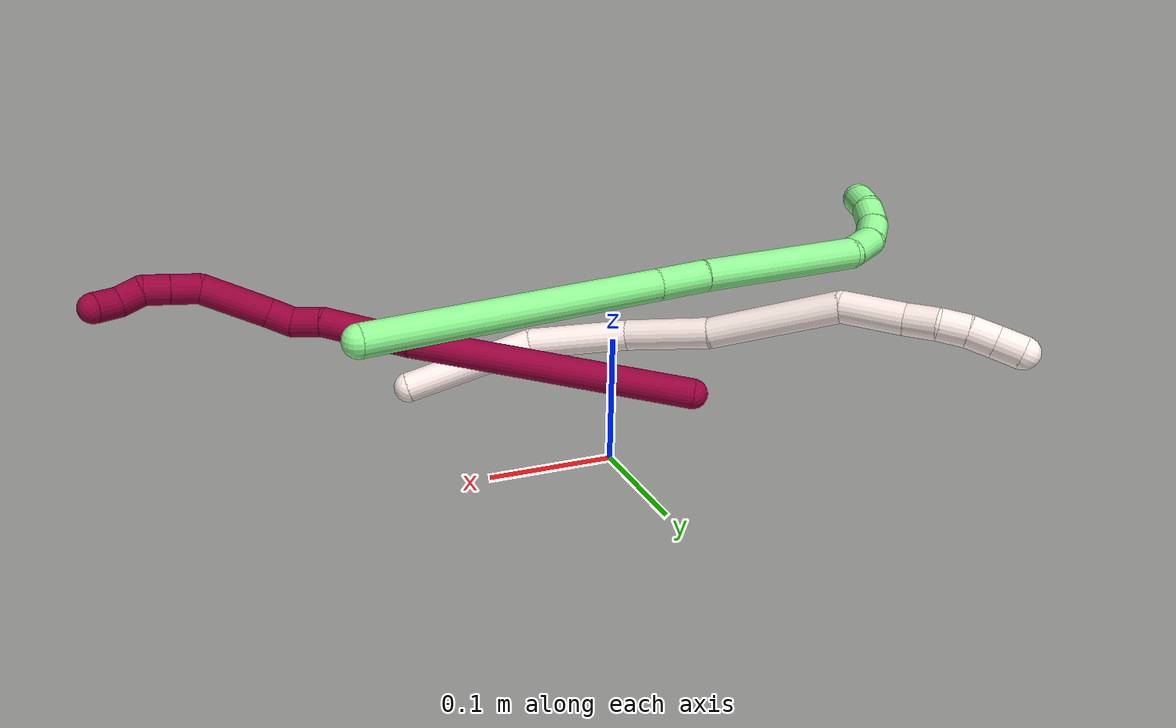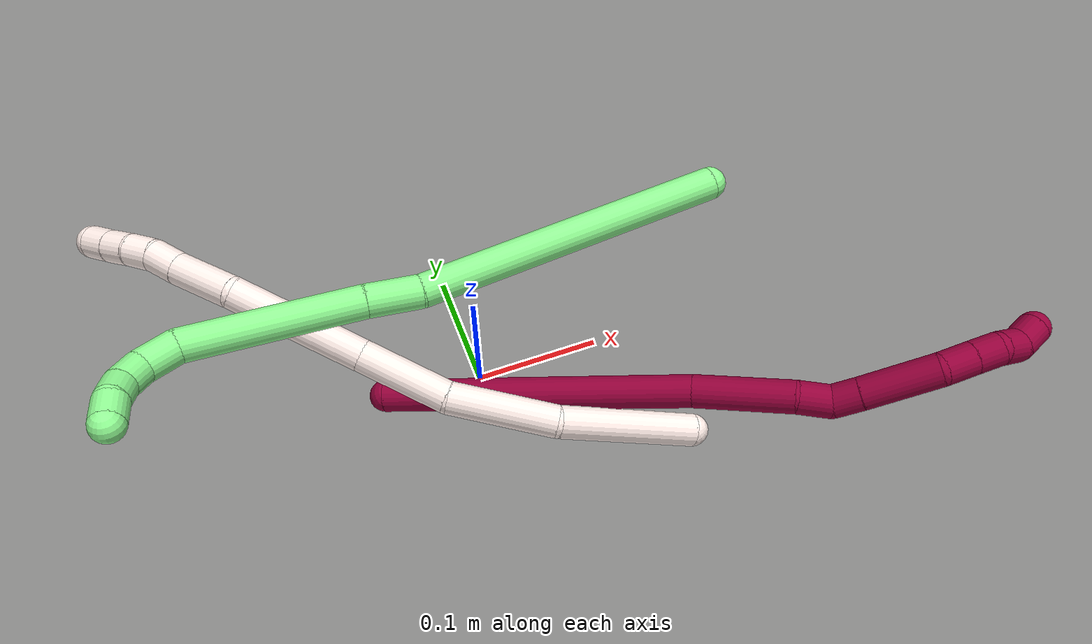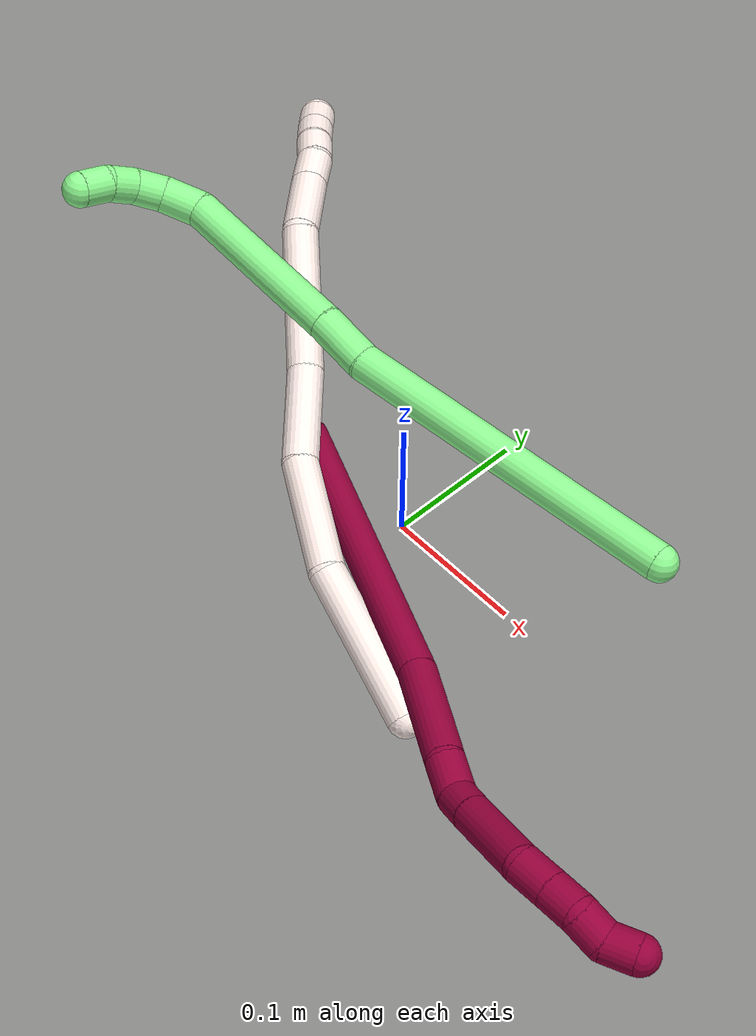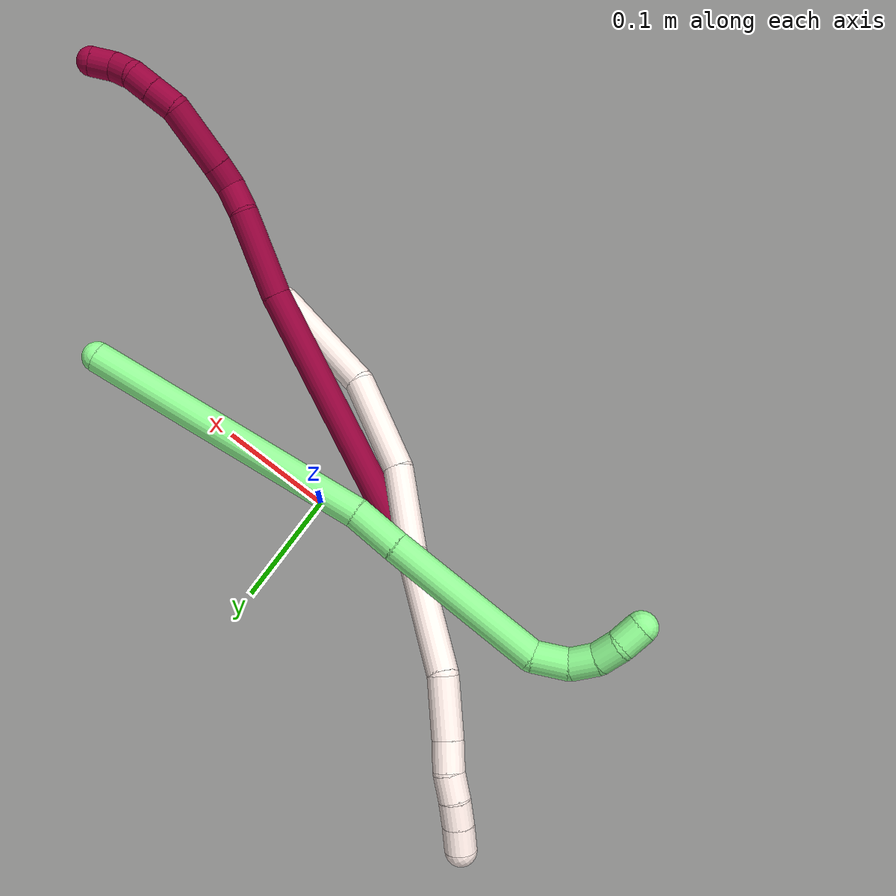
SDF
<sdf version="1.7">
 <world name="default">
  <model name="photoneo_s_sensor">
   <static>1</static>
   <pose>0 0 2 1.57079 1.57079 3.14159</pose>
   <link name="link">
    <inertial><mass>0.1</mass></inertial>
    <sensor name="sensor" type="depth">
     <update_rate>30</update_rate>
     <camera>
      <horizontal_fov>1.22</horizontal_fov>
      <image><width>1920</width><height>1200</height><format>B8G8R8</format></image>
      <clip><near>0.1</near><far>4</far></clip>
      <depth_camera><output>points</output></depth_camera>
     </camera>
     <plugin name="camera_plugin" filename="libgazebo_ros_depth_camera.so">
      <baseline>0.2</baseline>
      <alwaysOn>1</alwaysOn>
      <updateRate>0.0</updateRate>
      <cameraName>camera_ir</cameraName>
      <imageTopicName>/camera/color/image_raw</imageTopicName>
      <cameraInfoTopicName>/camera/color/camera_info</cameraInfoTopicName>
      <depthImageTopicName>/camera/depth/image_raw</depthImageTopicName>
      <depthImageCameraInfoTopicName>/camera/depth/camera_info</depthImageCameraInfoTopicName>
      <pointCloudTopicName>/camera/depth/points</pointCloudTopicName>
      <frameName>fr_optical</frameName>
      <pointCloudCutoff>0.1</pointCloudCutoff>
      <pointCloudCutoffMax>2.0</pointCloudCutoffMax>
      <distortionK1>0</distortionK1>
      <distortionK2>0</distortionK2>
      <distortionK3>0</distortionK3>
      <distortionT1>0</distortionT1>
      <distortionT2>0</distortionT2>
      <CxPrime>0</CxPrime>
      <Cx>0</Cx>
      <Cy>0</Cy>
      <focalLength>0</focalLength>
      <hackBaseline>0</hackBaseline>
     </plugin>
    </sensor>
   </link>
  </model>
  <model name="bin">
   <static>1</static>
   <link name="bottom">
    <collision name="collision-bottom">
     <pose>0 0 -0.01 0 -0 0</pose>
     <geometry><box><size>0.8 0.6 0.02</size></box></geometry>
     <surface>
      <friction><ode><mu>100</mu><mu2>100</mu2></ode></friction>
      <contact><collide_bitmask>65535</collide_bitmask></contact>
     </surface>
    </collision>
   </link>
   <link name="west_wall">
    <collision name="collision-west_wall">
     <pose>-0.41 0 0.1 0 -0 0</pose>
     <geometry><box><size>0.02 0.6 0.2</size></box></geometry>
     <surface>
      <friction><ode><mu>100</mu><mu2>100</mu2></ode></friction>
      <contact><collide_bitmask>65535</collide_bitmask></contact>
     </surface>
    </collision>
   </link>
   <link name="east_wall">
    <collision name="collision-east_wall">
     <pose>0.41 0 0.1 0 -0 0</pose>
     <geometry><box><size>0.02 0.6 0.2</size></box></geometry>
     <surface>
      <friction><ode><mu>100</mu><mu2>100</mu2></ode></friction>
      <contact><collide_bitmask>65535</collide_bitmask></contact>
     </surface>
    </collision>
   </link>
   <link name="south_wall">
    <collision name="collision-south_wall">
     <pose>0 -0.31 0.1 0 -0 0</pose>
     <geometry><box><size>0.8 0.02 0.2</size></box></geometry>
     <surface>
      <friction><ode><mu>100</mu><mu2>100</mu2></ode></friction>
      <contact><collide_bitmask>65535</collide_bitmask></contact>
     </surface>
    </collision>
   </link>
   <link name="north_wall">
    <collision name="collision-north_wall">
     <pose>0 0.31 0.1 0 -0 0</pose>
     <geometry><box><size>0.8 0.02 0.2</size></box></geometry>
     <surface>
      <friction><ode><mu>100</mu><mu2>100</mu2></ode></friction>
      <contact><collide_bitmask>65535</collide_bitmask></contact>
     </surface>
    </collision>
   </link>
  </model>
  <model name="8">
   <static>0</static>
   <link name="8">
    <collision name="collision-cylinder-e_1_1_4">
     <pose>0.082407 -0.004701 0.083787 0.056053 0.776304 0.022925</pose>
     <geometry><cylinder><radius>0.0125</radius><length>0.23523</length></cylinder></geometry>
     <surface>
      <friction><ode><mu>1.16</mu><mu2>1.16</mu2><slip1>0</slip1><slip2>0</slip2></ode></friction>
      <contact><ode><kp>1e+06</kp><kd>1</kd><max_vel>0</max_vel><min_depth>0.001</min_depth></ode></contact>
     </surface>
    </collision>
    <visual name="visual-cylinder-e_1_1_4">
     <pose>0.082407 -0.004701 0.083787 0.056053 0.776304 0.022925</pose>
     <geometry><cylinder><radius>0.0125</radius><length>0.23523</length></cylinder></geometry>
     <material><ambient>0.584314 0 0.227451 1</ambient></material>
    </visual>
    <collision name="collision-cylinder-e_2_4_5">
     <pose>0.189847 -0.014349 0.194839 0.179447 0.734708 0.069214</pose>
     <geometry><cylinder><radius>0.0125</radius><length>0.074687</length></cylinder></geometry>
     <surface>
      <friction><ode><mu>1.16</mu><mu2>1.16</mu2><slip1>0</slip1><slip2>0</slip2></ode></friction>
      <contact><ode><kp>1e+06</kp><kd>1</kd><max_vel>0</max_vel><min_depth>0.001</min_depth></ode></contact>
     </surface>
    </collision>
    <visual name="visual-cylinder-e_2_4_5">
     <pose>0.189847 -0.014349 0.194839 0.179447 0.734708 0.069214</pose>
     <geometry><cylinder><radius>0.0125</radius><length>0.074687</length></cylinder></geometry>
     <material><ambient>0.584314 0 0.227451 1</ambient></material>
    </visual>
    <collision name="collision-cylinder-e_3_5_6">
     <pose>0.225456 -0.020735 0.229204 0.200114 0.970182 0.105735</pose>
     <geometry><cylinder><radius>0.0125</radius><length>0.025638</length></cylinder></geometry>
     <surface>
      <friction><ode><mu>1.16</mu><mu2>1.16</mu2><slip1>0</slip1><slip2>0</slip2></ode></friction>
      <contact><ode><kp>1e+06</kp><kd>1</kd><max_vel>0</max_vel><min_depth>0.001</min_depth></ode></contact>
     </surface>
    </collision>
    <visual name="visual-cylinder-e_3_5_6">
     <pose>0.225456 -0.020735 0.229204 0.200114 0.970182 0.105735</pose>
     <geometry><cylinder><radius>0.0125</radius><length>0.025638</length></cylinder></geometry>
     <material><ambient>0.584314 0 0.227451 1</ambient></material>
    </visual>
    <collision name="collision-cylinder-e_4_6_7">
     <pose>0.24135 -0.020706 0.245379 -0.16044 0.524475 -0.043151</pose>
     <geometry><cylinder><radius>0.0125</radius><length>0.021242</length></cylinder></geometry>
     <surface>
      <friction><ode><mu>1.16</mu><mu2>1.16</mu2><slip1>0</slip1><slip2>0</slip2></ode></friction>
      <contact><ode><kp>1e+06</kp><kd>1</kd><max_vel>0</max_vel><min_depth>0.001</min_depth></ode></contact>
     </surface>
    </collision>
    <visual name="visual-cylinder-e_4_6_7">
     <pose>0.24135 -0.020706 0.245379 -0.16044 0.524475 -0.043151</pose>
     <geometry><cylinder><radius>0.0125</radius><length>0.021242</length></cylinder></geometry>
     <material><ambient>0.584314 0 0.227451 1</ambient></material>
    </visual>
    <collision name="collision-cylinder-e_5_7_8">
     <pose>0.26145 -0.014197 0.278363 -0.207773 0.544047 -0.058149</pose>
     <geometry><cylinder><radius>0.0125</radius><length>0.057114</length></cylinder></geometry>
     <surface>
      <friction><ode><mu>1.16</mu><mu2>1.16</mu2><slip1>0</slip1><slip2>0</slip2></ode></friction>
      <contact><ode><kp>1e+06</kp><kd>1</kd><max_vel>0</max_vel><min_depth>0.001</min_depth></ode></contact>
     </surface>
    </collision>
    <visual name="visual-cylinder-e_5_7_8">
     <pose>0.26145 -0.014197 0.278363 -0.207773 0.544047 -0.058149</pose>
     <geometry><cylinder><radius>0.0125</radius><length>0.057114</length></cylinder></geometry>
     <material><ambient>0.584314 0 0.227451 1</ambient></material>
    </visual>
    <collision name="collision-cylinder-e_6_8_9">
     <pose>0.285009 -0.004832 0.309044 -0.56835 0.829529 -0.255806</pose>
     <geometry><cylinder><radius>0.0125</radius><length>0.023803</length></cylinder></geometry>
     <surface>
      <friction><ode><mu>1.16</mu><mu2>1.16</mu2><slip1>0</slip1><slip2>0</slip2></ode></friction>
      <contact><ode><kp>1e+06</kp><kd>1</kd><max_vel>0</max_vel><min_depth>0.001</min_depth></ode></contact>
     </surface>
    </collision>
    <visual name="visual-cylinder-e_6_8_9">
     <pose>0.285009 -0.004832 0.309044 -0.56835 0.829529 -0.255806</pose>
     <geometry><cylinder><radius>0.0125</radius><length>0.023803</length></cylinder></geometry>
     <material><ambient>0.584314 0 0.227451 1</ambient></material>
    </visual>
    <collision name="collision-cylinder-e_7_9_10">
     <pose>0.301518 0.003215 0.321763 -0.559204 0.833852 -0.252971</pose>
     <geometry><cylinder><radius>0.0125</radius><length>0.020876</length></cylinder></geometry>
     <surface>
      <friction><ode><mu>1.16</mu><mu2>1.16</mu2><slip1>0</slip1><slip2>0</slip2></ode></friction>
      <contact><ode><kp>1e+06</kp><kd>1</kd><max_vel>0</max_vel><min_depth>0.001</min_depth></ode></contact>
     </surface>
    </collision>
    <visual name="visual-cylinder-e_7_9_10">
     <pose>0.301518 0.003215 0.321763 -0.559204 0.833852 -0.252971</pose>
     <geometry><cylinder><radius>0.0125</radius><length>0.020876</length></cylinder></geometry>
     <material><ambient>0.584314 0 0.227451 1</ambient></material>
    </visual>
    <collision name="collision-cylinder-e_8_10_11">
     <pose>0.318752 0.010511 0.329295 -1.15323 1.1805 -0.821751</pose>
     <geometry><cylinder><radius>0.0125</radius><length>0.020556</length></cylinder></geometry>
     <surface>
      <friction><ode><mu>1.16</mu><mu2>1.16</mu2><slip1>0</slip1><slip2>0</slip2></ode></friction>
      <contact><ode><kp>1e+06</kp><kd>1</kd><max_vel>0</max_vel><min_depth>0.001</min_depth></ode></contact>
     </surface>
    </collision>
    <visual name="visual-cylinder-e_8_10_11">
     <pose>0.318752 0.010511 0.329295 -1.15323 1.1805 -0.821751</pose>
     <geometry><cylinder><radius>0.0125</radius><length>0.020556</length></cylinder></geometry>
     <material><ambient>0.584314 0 0.227451 1</ambient></material>
    </visual>
    <collision name="collision-cylinder-e_9_11_2">
     <pose>0.334875 0.021383 0.3343 -1.13264 0.687485 -0.447544</pose>
     <geometry><cylinder><radius>0.0125</radius><length>0.020855</length></cylinder></geometry>
     <surface>
      <friction><ode><mu>1.16</mu><mu2>1.16</mu2><slip1>0</slip1><slip2>0</slip2></ode></friction>
      <contact><ode><kp>1e+06</kp><kd>1</kd><max_vel>0</max_vel><min_depth>0.001</min_depth></ode></contact>
     </surface>
    </collision>
    <visual name="visual-cylinder-e_9_11_2">
     <pose>0.334875 0.021383 0.3343 -1.13264 0.687485 -0.447544</pose>
     <geometry><cylinder><radius>0.0125</radius><length>0.020855</length></cylinder></geometry>
     <material><ambient>0.584314 0 0.227451 1</ambient></material>
    </visual>
    <collision name="collision-sphere-2">
     <pose>0.341492 0.028681 0.337719 0 -0 0</pose>
     <geometry><sphere><radius>0.0125</radius></sphere></geometry>
     <surface>
      <friction><ode><mu>1.16</mu><mu2>1.16</mu2><slip1>0</slip1><slip2>0</slip2></ode></friction>
      <contact><ode><kp>1e+06</kp><kd>1</kd><max_vel>0</max_vel><min_depth>0.001</min_depth></ode></contact>
     </surface>
    </collision>
    <visual name="visual-sphere-2">
     <pose>0.341492 0.028681 0.337719 0 -0 0</pose>
     <geometry><sphere><radius>0.0125</radius></sphere></geometry>
     <material><ambient>0.584314 0 0.227451 1</ambient></material>
    </visual>
    <collision name="collision-sphere-11">
     <pose>0.328258 0.014085 0.330881 0 -0 0</pose>
     <geometry><sphere><radius>0.0125</radius></sphere></geometry>
     <surface>
      <friction><ode><mu>1.16</mu><mu2>1.16</mu2><slip1>0</slip1><slip2>0</slip2></ode></friction>
      <contact><ode><kp>1e+06</kp><kd>1</kd><max_vel>0</max_vel><min_depth>0.001</min_depth></ode></contact>
     </surface>
    </collision>
    <visual name="visual-sphere-11">
     <pose>0.328258 0.014085 0.330881 0 -0 0</pose>
     <geometry><sphere><radius>0.0125</radius></sphere></geometry>
     <material><ambient>0.584314 0 0.227451 1</ambient></material>
    </visual>
    <collision name="collision-sphere-10">
     <pose>0.309247 0.006936 0.327709 0 -0 0</pose>
     <geometry><sphere><radius>0.0125</radius></sphere></geometry>
     <surface>
      <friction><ode><mu>1.16</mu><mu2>1.16</mu2><slip1>0</slip1><slip2>0</slip2></ode></friction>
      <contact><ode><kp>1e+06</kp><kd>1</kd><max_vel>0</max_vel><min_depth>0.001</min_depth></ode></contact>
     </surface>
    </collision>
    <visual name="visual-sphere-10">
     <pose>0.309247 0.006936 0.327709 0 -0 0</pose>
     <geometry><sphere><radius>0.0125</radius></sphere></geometry>
     <material><ambient>0.584314 0 0.227451 1</ambient></material>
    </visual>
    <collision name="collision-sphere-9">
     <pose>0.293788 -0.000506 0.315817 0 -0 0</pose>
     <geometry><sphere><radius>0.0125</radius></sphere></geometry>
     <surface>
      <friction><ode><mu>1.16</mu><mu2>1.16</mu2><slip1>0</slip1><slip2>0</slip2></ode></friction>
      <contact><ode><kp>1e+06</kp><kd>1</kd><max_vel>0</max_vel><min_depth>0.001</min_depth></ode></contact>
     </surface>
    </collision>
    <visual name="visual-sphere-9">
     <pose>0.293788 -0.000506 0.315817 0 -0 0</pose>
     <geometry><sphere><radius>0.0125</radius></sphere></geometry>
     <material><ambient>0.584314 0 0.227451 1</ambient></material>
    </visual>
    <collision name="collision-sphere-4">
     <pose>0.164813 -0.009403 0.167575 0 -0 0</pose>
     <geometry><sphere><radius>0.0125</radius></sphere></geometry>
     <surface>
      <friction><ode><mu>1.16</mu><mu2>1.16</mu2><slip1>0</slip1><slip2>0</slip2></ode></friction>
      <contact><ode><kp>1e+06</kp><kd>1</kd><max_vel>0</max_vel><min_depth>0.001</min_depth></ode></contact>
     </surface>
    </collision>
    <visual name="visual-sphere-4">
     <pose>0.164813 -0.009403 0.167575 0 -0 0</pose>
     <geometry><sphere><radius>0.0125</radius></sphere></geometry>
     <material><ambient>0.584314 0 0.227451 1</ambient></material>
    </visual>
    <collision name="collision-sphere-1">
     <geometry><sphere><radius>0.0125</radius></sphere></geometry>
     <surface>
      <friction><ode><mu>1.16</mu><mu2>1.16</mu2><slip1>0</slip1><slip2>0</slip2></ode></friction>
      <contact><ode><kp>1e+06</kp><kd>1</kd><max_vel>0</max_vel><min_depth>0.001</min_depth></ode></contact>
     </surface>
    </collision>
    <visual name="visual-sphere-1">
     <geometry><sphere><radius>0.0125</radius></sphere></geometry>
     <material><ambient>0.584314 0 0.227451 1</ambient></material>
    </visual>
    <collision name="collision-sphere-8">
     <pose>0.276231 -0.009157 0.302272 0 -0 0</pose>
     <geometry><sphere><radius>0.0125</radius></sphere></geometry>
     <surface>
      <friction><ode><mu>1.16</mu><mu2>1.16</mu2><slip1>0</slip1><slip2>0</slip2></ode></friction>
      <contact><ode><kp>1e+06</kp><kd>1</kd><max_vel>0</max_vel><min_depth>0.001</min_depth></ode></contact>
     </surface>
    </collision>
    <visual name="visual-sphere-8">
     <pose>0.276231 -0.009157 0.302272 0 -0 0</pose>
     <geometry><sphere><radius>0.0125</radius></sphere></geometry>
     <material><ambient>0.584314 0 0.227451 1</ambient></material>
    </visual>
    <collision name="collision-sphere-5">
     <pose>0.214881 -0.019295 0.222104 0 -0 0</pose>
     <geometry><sphere><radius>0.0125</radius></sphere></geometry>
     <surface>
      <friction><ode><mu>1.16</mu><mu2>1.16</mu2><slip1>0</slip1><slip2>0</slip2></ode></friction>
      <contact><ode><kp>1e+06</kp><kd>1</kd><max_vel>0</max_vel><min_depth>0.001</min_depth></ode></contact>
     </surface>
    </collision>
    <visual name="visual-sphere-5">
     <pose>0.214881 -0.019295 0.222104 0 -0 0</pose>
     <geometry><sphere><radius>0.0125</radius></sphere></geometry>
     <material><ambient>0.584314 0 0.227451 1</ambient></material>
    </visual>
    <collision name="collision-sphere-6">
     <pose>0.236032 -0.022175 0.236304 0 -0 0</pose>
     <geometry><sphere><radius>0.0125</radius></sphere></geometry>
     <surface>
      <friction><ode><mu>1.16</mu><mu2>1.16</mu2><slip1>0</slip1><slip2>0</slip2></ode></friction>
      <contact><ode><kp>1e+06</kp><kd>1</kd><max_vel>0</max_vel><min_depth>0.001</min_depth></ode></contact>
     </surface>
    </collision>
    <visual name="visual-sphere-6">
     <pose>0.236032 -0.022175 0.236304 0 -0 0</pose>
     <geometry><sphere><radius>0.0125</radius></sphere></geometry>
     <material><ambient>0.584314 0 0.227451 1</ambient></material>
    </visual>
    <collision name="collision-sphere-7">
     <pose>0.246669 -0.019237 0.254455 0 -0 0</pose>
     <geometry><sphere><radius>0.0125</radius></sphere></geometry>
     <surface>
      <friction><ode><mu>1.16</mu><mu2>1.16</mu2><slip1>0</slip1><slip2>0</slip2></ode></friction>
      <contact><ode><kp>1e+06</kp><kd>1</kd><max_vel>0</max_vel><min_depth>0.001</min_depth></ode></contact>
     </surface>
    </collision>
    <visual name="visual-sphere-7">
     <pose>0.246669 -0.019237 0.254455 0 -0 0</pose>
     <geometry><sphere><radius>0.0125</radius></sphere></geometry>
     <material><ambient>0.584314 0 0.227451 1</ambient></material>
    </visual>
    <inertial>
     <pose>0.172035 -0.006691 0.178125 0 -0 0</pose>
     <mass>0.5</mass>
     <inertia>
      <ixx>0.000874</ixx>
      <ixy>0</ixy>
      <ixz>0</ixz>
      <iyy>0.001177</iyy>
      <iyz>0</iyz>
      <izz>-0.00074</izz>
     </inertia>
    </inertial>
   </link>
   <pose>-0.078661 -0.013309 0.037976 0.180853 0.61634 -0.267081</pose>
  </model>
  <model name="11">
   <static>0</static>
   <link name="11">
    <collision name="collision-cylinder-e_1_1_4">
     <pose>-0.014424 0.035158 0.038717 -0.737256 -0.269115 0.104492</pose>
     <geometry><cylinder><radius>0.0125</radius><length>0.108501</length></cylinder></geometry>
     <surface>
      <friction><ode><mu>1.16</mu><mu2>1.16</mu2><slip1>0</slip1><slip2>0</slip2></ode></friction>
      <contact><ode><kp>1e+06</kp><kd>1</kd><max_vel>0</max_vel><min_depth>0.001</min_depth></ode></contact>
     </surface>
    </collision>
    <visual name="visual-cylinder-e_1_1_4">
     <pose>-0.014424 0.035158 0.038717 -0.737256 -0.269115 0.104492</pose>
     <geometry><cylinder><radius>0.0125</radius><length>0.108501</length></cylinder></geometry>
     <material><ambient>1 0.933333 0.909804 1</ambient></material>
    </visual>
    <collision name="collision-cylinder-e_2_4_5">
     <pose>-0.047151 0.086517 0.110547 -0.455025 -0.460828 0.108514</pose>
     <geometry><cylinder><radius>0.0125</radius><length>0.082316</length></cylinder></geometry>
     <surface>
      <friction><ode><mu>1.16</mu><mu2>1.16</mu2><slip1>0</slip1><slip2>0</slip2></ode></friction>
      <contact><ode><kp>1e+06</kp><kd>1</kd><max_vel>0</max_vel><min_depth>0.001</min_depth></ode></contact>
     </surface>
    </collision>
    <visual name="visual-cylinder-e_2_4_5">
     <pose>-0.047151 0.086517 0.110547 -0.455025 -0.460828 0.108514</pose>
     <geometry><cylinder><radius>0.0125</radius><length>0.082316</length></cylinder></geometry>
     <material><ambient>1 0.933333 0.909804 1</ambient></material>
    </visual>
    <collision name="collision-cylinder-e_3_5_6">
     <pose>-0.088386 0.112101 0.16889 -0.356066 -0.705632 0.132321</pose>
     <geometry><cylinder><radius>0.0125</radius><length>0.070723</length></cylinder></geometry>
     <surface>
      <friction><ode><mu>1.16</mu><mu2>1.16</mu2><slip1>0</slip1><slip2>0</slip2></ode></friction>
      <contact><ode><kp>1e+06</kp><kd>1</kd><max_vel>0</max_vel><min_depth>0.001</min_depth></ode></contact>
     </surface>
    </collision>
    <visual name="visual-cylinder-e_3_5_6">
     <pose>-0.088386 0.112101 0.16889 -0.356066 -0.705632 0.132321</pose>
     <geometry><cylinder><radius>0.0125</radius><length>0.070723</length></cylinder></geometry>
     <material><ambient>1 0.933333 0.909804 1</ambient></material>
    </visual>
    <collision name="collision-cylinder-e_4_6_7">
     <pose>-0.14436 0.143535 0.227927 -0.577934 -0.685995 0.211539</pose>
     <geometry><cylinder><radius>0.0125</radius><length>0.104326</length></cylinder></geometry>
     <surface>
      <friction><ode><mu>1.16</mu><mu2>1.16</mu2><slip1>0</slip1><slip2>0</slip2></ode></friction>
      <contact><ode><kp>1e+06</kp><kd>1</kd><max_vel>0</max_vel><min_depth>0.001</min_depth></ode></contact>
     </surface>
    </collision>
    <visual name="visual-cylinder-e_4_6_7">
     <pose>-0.14436 0.143535 0.227927 -0.577934 -0.685995 0.211539</pose>
     <geometry><cylinder><radius>0.0125</radius><length>0.104326</length></cylinder></geometry>
     <material><ambient>1 0.933333 0.909804 1</ambient></material>
    </visual>
    <collision name="collision-cylinder-e_5_7_8">
     <pose>-0.192353 0.166869 0.28089 -0.06694 -0.661636 0.022997</pose>
     <geometry><cylinder><radius>0.0125</radius><length>0.048666</length></cylinder></geometry>
     <surface>
      <friction><ode><mu>1.16</mu><mu2>1.16</mu2><slip1>0</slip1><slip2>0</slip2></ode></friction>
      <contact><ode><kp>1e+06</kp><kd>1</kd><max_vel>0</max_vel><min_depth>0.001</min_depth></ode></contact>
     </surface>
    </collision>
    <visual name="visual-cylinder-e_5_7_8">
     <pose>-0.192353 0.166869 0.28089 -0.06694 -0.661636 0.022997</pose>
     <geometry><cylinder><radius>0.0125</radius><length>0.048666</length></cylinder></geometry>
     <material><ambient>1 0.933333 0.909804 1</ambient></material>
    </visual>
    <collision name="collision-cylinder-e_6_8_9">
     <pose>-0.215402 0.169019 0.308976 -0.096637 -0.734241 0.037187</pose>
     <geometry><cylinder><radius>0.0125</radius><length>0.024173</length></cylinder></geometry>
     <surface>
      <friction><ode><mu>1.16</mu><mu2>1.16</mu2><slip1>0</slip1><slip2>0</slip2></ode></friction>
      <contact><ode><kp>1e+06</kp><kd>1</kd><max_vel>0</max_vel><min_depth>0.001</min_depth></ode></contact>
     </surface>
    </collision>
    <visual name="visual-cylinder-e_6_8_9">
     <pose>-0.215402 0.169019 0.308976 -0.096637 -0.734241 0.037187</pose>
     <geometry><cylinder><radius>0.0125</radius><length>0.024173</length></cylinder></geometry>
     <material><ambient>1 0.933333 0.909804 1</ambient></material>
    </visual>
    <collision name="collision-cylinder-e_7_9_10">
     <pose>-0.228531 0.170566 0.327081 -0.074192 -0.500381 0.018968</pose>
     <geometry><cylinder><radius>0.0125</radius><length>0.02097</length></cylinder></geometry>
     <surface>
      <friction><ode><mu>1.16</mu><mu2>1.16</mu2><slip1>0</slip1><slip2>0</slip2></ode></friction>
      <contact><ode><kp>1e+06</kp><kd>1</kd><max_vel>0</max_vel><min_depth>0.001</min_depth></ode></contact>
     </surface>
    </collision>
    <visual name="visual-cylinder-e_7_9_10">
     <pose>-0.228531 0.170566 0.327081 -0.074192 -0.500381 0.018968</pose>
     <geometry><cylinder><radius>0.0125</radius><length>0.02097</length></cylinder></geometry>
     <material><ambient>1 0.933333 0.909804 1</ambient></material>
    </visual>
    <collision name="collision-cylinder-e_8_10_11">
     <pose>-0.238024 0.170478 0.345268 0.085304 -0.45837 -0.019912</pose>
     <geometry><cylinder><radius>0.0125</radius><length>0.020173</length></cylinder></geometry>
     <surface>
      <friction><ode><mu>1.16</mu><mu2>1.16</mu2><slip1>0</slip1><slip2>0</slip2></ode></friction>
      <contact><ode><kp>1e+06</kp><kd>1</kd><max_vel>0</max_vel><min_depth>0.001</min_depth></ode></contact>
     </surface>
    </collision>
    <visual name="visual-cylinder-e_8_10_11">
     <pose>-0.238024 0.170478 0.345268 0.085304 -0.45837 -0.019912</pose>
     <geometry><cylinder><radius>0.0125</radius><length>0.020173</length></cylinder></geometry>
     <material><ambient>1 0.933333 0.909804 1</ambient></material>
    </visual>
    <collision name="collision-cylinder-e_9_11_2">
     <pose>-0.247243 0.168687 0.363104 0.115068 -0.491511 -0.028892</pose>
     <geometry><cylinder><radius>0.0125</radius><length>0.020152</length></cylinder></geometry>
     <surface>
      <friction><ode><mu>1.16</mu><mu2>1.16</mu2><slip1>0</slip1><slip2>0</slip2></ode></friction>
      <contact><ode><kp>1e+06</kp><kd>1</kd><max_vel>0</max_vel><min_depth>0.001</min_depth></ode></contact>
     </surface>
    </collision>
    <visual name="visual-cylinder-e_9_11_2">
     <pose>-0.247243 0.168687 0.363104 0.115068 -0.491511 -0.028892</pose>
     <geometry><cylinder><radius>0.0125</radius><length>0.020152</length></cylinder></geometry>
     <material><ambient>1 0.933333 0.909804 1</ambient></material>
    </visual>
    <collision name="collision-sphere-2">
     <pose>-0.251998 0.167667 0.371929 0 -0 0</pose>
     <geometry><sphere><radius>0.0125</radius></sphere></geometry>
     <surface>
      <friction><ode><mu>1.16</mu><mu2>1.16</mu2><slip1>0</slip1><slip2>0</slip2></ode></friction>
      <contact><ode><kp>1e+06</kp><kd>1</kd><max_vel>0</max_vel><min_depth>0.001</min_depth></ode></contact>
     </surface>
    </collision>
    <visual name="visual-sphere-2">
     <pose>-0.251998 0.167667 0.371929 0 -0 0</pose>
     <geometry><sphere><radius>0.0125</radius></sphere></geometry>
     <material><ambient>1 0.933333 0.909804 1</ambient></material>
    </visual>
    <collision name="collision-sphere-11">
     <pose>-0.242487 0.169707 0.35428 0 -0 0</pose>
     <geometry><sphere><radius>0.0125</radius></sphere></geometry>
     <surface>
      <friction><ode><mu>1.16</mu><mu2>1.16</mu2><slip1>0</slip1><slip2>0</slip2></ode></friction>
      <contact><ode><kp>1e+06</kp><kd>1</kd><max_vel>0</max_vel><min_depth>0.001</min_depth></ode></contact>
     </surface>
    </collision>
    <visual name="visual-sphere-11">
     <pose>-0.242487 0.169707 0.35428 0 -0 0</pose>
     <geometry><sphere><radius>0.0125</radius></sphere></geometry>
     <material><ambient>1 0.933333 0.909804 1</ambient></material>
    </visual>
    <collision name="collision-sphere-10">
     <pose>-0.233561 0.171248 0.336255 0 -0 0</pose>
     <geometry><sphere><radius>0.0125</radius></sphere></geometry>
     <surface>
      <friction><ode><mu>1.16</mu><mu2>1.16</mu2><slip1>0</slip1><slip2>0</slip2></ode></friction>
      <contact><ode><kp>1e+06</kp><kd>1</kd><max_vel>0</max_vel><min_depth>0.001</min_depth></ode></contact>
     </surface>
    </collision>
    <visual name="visual-sphere-10">
     <pose>-0.233561 0.171248 0.336255 0 -0 0</pose>
     <geometry><sphere><radius>0.0125</radius></sphere></geometry>
     <material><ambient>1 0.933333 0.909804 1</ambient></material>
    </visual>
    <collision name="collision-sphere-9">
     <pose>-0.2235 0.169885 0.317907 0 -0 0</pose>
     <geometry><sphere><radius>0.0125</radius></sphere></geometry>
     <surface>
      <friction><ode><mu>1.16</mu><mu2>1.16</mu2><slip1>0</slip1><slip2>0</slip2></ode></friction>
      <contact><ode><kp>1e+06</kp><kd>1</kd><max_vel>0</max_vel><min_depth>0.001</min_depth></ode></contact>
     </surface>
    </collision>
    <visual name="visual-sphere-9">
     <pose>-0.2235 0.169885 0.317907 0 -0 0</pose>
     <geometry><sphere><radius>0.0125</radius></sphere></geometry>
     <material><ambient>1 0.933333 0.909804 1</ambient></material>
    </visual>
    <collision name="collision-sphere-4">
     <pose>-0.028848 0.070315 0.077434 0 -0 0</pose>
     <geometry><sphere><radius>0.0125</radius></sphere></geometry>
     <surface>
      <friction><ode><mu>1.16</mu><mu2>1.16</mu2><slip1>0</slip1><slip2>0</slip2></ode></friction>
      <contact><ode><kp>1e+06</kp><kd>1</kd><max_vel>0</max_vel><min_depth>0.001</min_depth></ode></contact>
     </surface>
    </collision>
    <visual name="visual-sphere-4">
     <pose>-0.028848 0.070315 0.077434 0 -0 0</pose>
     <geometry><sphere><radius>0.0125</radius></sphere></geometry>
     <material><ambient>1 0.933333 0.909804 1</ambient></material>
    </visual>
    <collision name="collision-sphere-1">
     <geometry><sphere><radius>0.0125</radius></sphere></geometry>
     <surface>
      <friction><ode><mu>1.16</mu><mu2>1.16</mu2><slip1>0</slip1><slip2>0</slip2></ode></friction>
      <contact><ode><kp>1e+06</kp><kd>1</kd><max_vel>0</max_vel><min_depth>0.001</min_depth></ode></contact>
     </surface>
    </collision>
    <visual name="visual-sphere-1">
     <geometry><sphere><radius>0.0125</radius></sphere></geometry>
     <material><ambient>1 0.933333 0.909804 1</ambient></material>
    </visual>
    <collision name="collision-sphere-8">
     <pose>-0.207304 0.168153 0.300046 0 -0 0</pose>
     <geometry><sphere><radius>0.0125</radius></sphere></geometry>
     <surface>
      <friction><ode><mu>1.16</mu><mu2>1.16</mu2><slip1>0</slip1><slip2>0</slip2></ode></friction>
      <contact><ode><kp>1e+06</kp><kd>1</kd><max_vel>0</max_vel><min_depth>0.001</min_depth></ode></contact>
     </surface>
    </collision>
    <visual name="visual-sphere-8">
     <pose>-0.207304 0.168153 0.300046 0 -0 0</pose>
     <geometry><sphere><radius>0.0125</radius></sphere></geometry>
     <material><ambient>1 0.933333 0.909804 1</ambient></material>
    </visual>
    <collision name="collision-sphere-5">
     <pose>-0.065453 0.102718 0.143661 0 -0 0</pose>
     <geometry><sphere><radius>0.0125</radius></sphere></geometry>
     <surface>
      <friction><ode><mu>1.16</mu><mu2>1.16</mu2><slip1>0</slip1><slip2>0</slip2></ode></friction>
      <contact><ode><kp>1e+06</kp><kd>1</kd><max_vel>0</max_vel><min_depth>0.001</min_depth></ode></contact>
     </surface>
    </collision>
    <visual name="visual-sphere-5">
     <pose>-0.065453 0.102718 0.143661 0 -0 0</pose>
     <geometry><sphere><radius>0.0125</radius></sphere></geometry>
     <material><ambient>1 0.933333 0.909804 1</ambient></material>
    </visual>
    <collision name="collision-sphere-6">
     <pose>-0.111318 0.121484 0.194119 0 -0 0</pose>
     <geometry><sphere><radius>0.0125</radius></sphere></geometry>
     <surface>
      <friction><ode><mu>1.16</mu><mu2>1.16</mu2><slip1>0</slip1><slip2>0</slip2></ode></friction>
      <contact><ode><kp>1e+06</kp><kd>1</kd><max_vel>0</max_vel><min_depth>0.001</min_depth></ode></contact>
     </surface>
    </collision>
    <visual name="visual-sphere-6">
     <pose>-0.111318 0.121484 0.194119 0 -0 0</pose>
     <geometry><sphere><radius>0.0125</radius></sphere></geometry>
     <material><ambient>1 0.933333 0.909804 1</ambient></material>
    </visual>
    <collision name="collision-sphere-7">
     <pose>-0.177403 0.165585 0.261735 0 -0 0</pose>
     <geometry><sphere><radius>0.0125</radius></sphere></geometry>
     <surface>
      <friction><ode><mu>1.16</mu><mu2>1.16</mu2><slip1>0</slip1><slip2>0</slip2></ode></friction>
      <contact><ode><kp>1e+06</kp><kd>1</kd><max_vel>0</max_vel><min_depth>0.001</min_depth></ode></contact>
     </surface>
    </collision>
    <visual name="visual-sphere-7">
     <pose>-0.177403 0.165585 0.261735 0 -0 0</pose>
     <geometry><sphere><radius>0.0125</radius></sphere></geometry>
     <material><ambient>1 0.933333 0.909804 1</ambient></material>
    </visual>
    <inertial>
     <pose>-0.111804 0.112921 0.182607 0 -0 0</pose>
     <mass>0.5</mass>
     <inertia><ixx>0.00028</ixx><ixy>0</ixy><ixz>0</ixz><iyy>0.000315</iyy><iyz>0</iyz><izz>3.2e-05</izz></inertia>
    </inertial>
   </link>
   <pose>0.131626 -0.120569 0.032849 2.07216 0.432829 -1.64878</pose>
  </model>
  <model name="13">
   <static>0</static>
   <link name="13">
    <collision name="collision-cylinder-e_1_1_4">
     <pose>-0.119385 0.003972 -0.004652 -2.43496 -1.5196 2.40106</pose>
     <geometry><cylinder><radius>0.0125</radius><length>0.239084</length></cylinder></geometry>
     <surface>
      <friction><ode><mu>1.16</mu><mu2>1.16</mu2><slip1>0</slip1><slip2>0</slip2></ode></friction>
      <contact><ode><kp>1e+06</kp><kd>1</kd><max_vel>0</max_vel><min_depth>0.001</min_depth></ode></contact>
     </surface>
    </collision>
    <visual name="visual-cylinder-e_1_1_4">
     <pose>-0.119385 0.003972 -0.004652 -2.43496 -1.5196 2.40106</pose>
     <geometry><cylinder><radius>0.0125</radius><length>0.239084</length></cylinder></geometry>
     <material><ambient>0.564706 0.984314 0.572549 1</ambient></material>
    </visual>
    <collision name="collision-cylinder-e_2_4_5">
     <pose>-0.258359 0.011665 -0.008092 -1.25574 -1.37356 1.0737</pose>
     <geometry><cylinder><radius>0.0125</radius><length>0.039952</length></cylinder></geometry>
     <surface>
      <friction><ode><mu>1.16</mu><mu2>1.16</mu2><slip1>0</slip1><slip2>0</slip2></ode></friction>
      <contact><ode><kp>1e+06</kp><kd>1</kd><max_vel>0</max_vel><min_depth>0.001</min_depth></ode></contact>
     </surface>
    </collision>
    <visual name="visual-cylinder-e_2_4_5">
     <pose>-0.258359 0.011665 -0.008092 -1.25574 -1.37356 1.0737</pose>
     <geometry><cylinder><radius>0.0125</radius><length>0.039952</length></cylinder></geometry>
     <material><ambient>0.564706 0.984314 0.572549 1</ambient></material>
    </visual>
    <collision name="collision-cylinder-e_3_5_6">
     <pose>-0.342284 0.026109 -0.006465 -1.53228 -1.40554 1.36767</pose>
     <geometry><cylinder><radius>0.0125</radius><length>0.13045</length></cylinder></geometry>
     <surface>
      <friction><ode><mu>1.16</mu><mu2>1.16</mu2><slip1>0</slip1><slip2>0</slip2></ode></friction>
      <contact><ode><kp>1e+06</kp><kd>1</kd><max_vel>0</max_vel><min_depth>0.001</min_depth></ode></contact>
     </surface>
    </collision>
    <visual name="visual-cylinder-e_3_5_6">
     <pose>-0.342284 0.026109 -0.006465 -1.53228 -1.40554 1.36767</pose>
     <geometry><cylinder><radius>0.0125</radius><length>0.13045</length></cylinder></geometry>
     <material><ambient>0.564706 0.984314 0.572549 1</ambient></material>
    </visual>
    <collision name="collision-cylinder-e_4_6_7">
     <pose>-0.420128 0.032453 -0.005474 1.43936 -1.25481 -1.13236</pose>
     <geometry><cylinder><radius>0.0125</radius><length>0.028422</length></cylinder></geometry>
     <surface>
      <friction><ode><mu>1.16</mu><mu2>1.16</mu2><slip1>0</slip1><slip2>0</slip2></ode></friction>
      <contact><ode><kp>1e+06</kp><kd>1</kd><max_vel>0</max_vel><min_depth>0.001</min_depth></ode></contact>
     </surface>
    </collision>
    <visual name="visual-cylinder-e_4_6_7">
     <pose>-0.420128 0.032453 -0.005474 1.43936 -1.25481 -1.13236</pose>
     <geometry><cylinder><radius>0.0125</radius><length>0.028422</length></cylinder></geometry>
     <material><ambient>0.564706 0.984314 0.572549 1</ambient></material>
    </visual>
    <collision name="collision-cylinder-e_5_7_8">
     <pose>-0.44139 0.020814 -0.002471 1.24862 -0.791934 -0.585074</pose>
     <geometry><cylinder><radius>0.0125</radius><length>0.021794</length></cylinder></geometry>
     <surface>
      <friction><ode><mu>1.16</mu><mu2>1.16</mu2><slip1>0</slip1><slip2>0</slip2></ode></friction>
      <contact><ode><kp>1e+06</kp><kd>1</kd><max_vel>0</max_vel><min_depth>0.001</min_depth></ode></contact>
     </surface>
    </collision>
    <visual name="visual-cylinder-e_5_7_8">
     <pose>-0.44139 0.020814 -0.002471 1.24862 -0.791934 -0.585074</pose>
     <geometry><cylinder><radius>0.0125</radius><length>0.021794</length></cylinder></geometry>
     <material><ambient>0.564706 0.984314 0.572549 1</ambient></material>
    </visual>
    <collision name="collision-cylinder-e_6_8_9">
     <pose>-0.453301 0.004939 0.00297 1.23392 -0.427237 -0.305353</pose>
     <geometry><cylinder><radius>0.0125</radius><length>0.020058</length></cylinder></geometry>
     <surface>
      <friction><ode><mu>1.16</mu><mu2>1.16</mu2><slip1>0</slip1><slip2>0</slip2></ode></friction>
      <contact><ode><kp>1e+06</kp><kd>1</kd><max_vel>0</max_vel><min_depth>0.001</min_depth></ode></contact>
     </surface>
    </collision>
    <visual name="visual-cylinder-e_6_8_9">
     <pose>-0.453301 0.004939 0.00297 1.23392 -0.427237 -0.305353</pose>
     <geometry><cylinder><radius>0.0125</radius><length>0.020058</length></cylinder></geometry>
     <material><ambient>0.564706 0.984314 0.572549 1</ambient></material>
    </visual>
    <collision name="collision-cylinder-e_7_9_2">
     <pose>-0.460831 -0.013212 0.006325 1.5353 -0.339857 -0.32822</pose>
     <geometry><cylinder><radius>0.0125</radius><length>0.020241</length></cylinder></geometry>
     <surface>
      <friction><ode><mu>1.16</mu><mu2>1.16</mu2><slip1>0</slip1><slip2>0</slip2></ode></friction>
      <contact><ode><kp>1e+06</kp><kd>1</kd><max_vel>0</max_vel><min_depth>0.001</min_depth></ode></contact>
     </surface>
    </collision>
    <visual name="visual-cylinder-e_7_9_2">
     <pose>-0.460831 -0.013212 0.006325 1.5353 -0.339857 -0.32822</pose>
     <geometry><cylinder><radius>0.0125</radius><length>0.020241</length></cylinder></geometry>
     <material><ambient>0.564706 0.984314 0.572549 1</ambient></material>
    </visual>
    <collision name="collision-sphere-2">
     <pose>-0.464204 -0.022748 0.006664 0 -0 0</pose>
     <geometry><sphere><radius>0.0125</radius></sphere></geometry>
     <surface>
      <friction><ode><mu>1.16</mu><mu2>1.16</mu2><slip1>0</slip1><slip2>0</slip2></ode></friction>
      <contact><ode><kp>1e+06</kp><kd>1</kd><max_vel>0</max_vel><min_depth>0.001</min_depth></ode></contact>
     </surface>
    </collision>
    <visual name="visual-sphere-2">
     <pose>-0.464204 -0.022748 0.006664 0 -0 0</pose>
     <geometry><sphere><radius>0.0125</radius></sphere></geometry>
     <material><ambient>0.564706 0.984314 0.572549 1</ambient></material>
    </visual>
    <collision name="collision-sphere-9">
     <pose>-0.457457 -0.003676 0.005987 0 -0 0</pose>
     <geometry><sphere><radius>0.0125</radius></sphere></geometry>
     <surface>
      <friction><ode><mu>1.16</mu><mu2>1.16</mu2><slip1>0</slip1><slip2>0</slip2></ode></friction>
      <contact><ode><kp>1e+06</kp><kd>1</kd><max_vel>0</max_vel><min_depth>0.001</min_depth></ode></contact>
     </surface>
    </collision>
    <visual name="visual-sphere-9">
     <pose>-0.457457 -0.003676 0.005987 0 -0 0</pose>
     <geometry><sphere><radius>0.0125</radius></sphere></geometry>
     <material><ambient>0.564706 0.984314 0.572549 1</ambient></material>
    </visual>
    <collision name="collision-sphere-4">
     <pose>-0.23877 0.007943 -0.009305 0 -0 0</pose>
     <geometry><sphere><radius>0.0125</radius></sphere></geometry>
     <surface>
      <friction><ode><mu>1.16</mu><mu2>1.16</mu2><slip1>0</slip1><slip2>0</slip2></ode></friction>
      <contact><ode><kp>1e+06</kp><kd>1</kd><max_vel>0</max_vel><min_depth>0.001</min_depth></ode></contact>
     </surface>
    </collision>
    <visual name="visual-sphere-4">
     <pose>-0.23877 0.007943 -0.009305 0 -0 0</pose>
     <geometry><sphere><radius>0.0125</radius></sphere></geometry>
     <material><ambient>0.564706 0.984314 0.572549 1</ambient></material>
    </visual>
    <collision name="collision-sphere-1">
     <geometry><sphere><radius>0.0125</radius></sphere></geometry>
     <surface>
      <friction><ode><mu>1.16</mu><mu2>1.16</mu2><slip1>0</slip1><slip2>0</slip2></ode></friction>
      <contact><ode><kp>1e+06</kp><kd>1</kd><max_vel>0</max_vel><min_depth>0.001</min_depth></ode></contact>
     </surface>
    </collision>
    <visual name="visual-sphere-1">
     <geometry><sphere><radius>0.0125</radius></sphere></geometry>
     <material><ambient>0.564706 0.984314 0.572549 1</ambient></material>
    </visual>
    <collision name="collision-sphere-8">
     <pose>-0.449146 0.013553 -4.7e-05 0 -0 0</pose>
     <geometry><sphere><radius>0.0125</radius></sphere></geometry>
     <surface>
      <friction><ode><mu>1.16</mu><mu2>1.16</mu2><slip1>0</slip1><slip2>0</slip2></ode></friction>
      <contact><ode><kp>1e+06</kp><kd>1</kd><max_vel>0</max_vel><min_depth>0.001</min_depth></ode></contact>
     </surface>
    </collision>
    <visual name="visual-sphere-8">
     <pose>-0.449146 0.013553 -4.7e-05 0 -0 0</pose>
     <geometry><sphere><radius>0.0125</radius></sphere></geometry>
     <material><ambient>0.564706 0.984314 0.572549 1</ambient></material>
    </visual>
    <collision name="collision-sphere-5">
     <pose>-0.277947 0.015387 -0.006879 0 -0 0</pose>
     <geometry><sphere><radius>0.0125</radius></sphere></geometry>
     <surface>
      <friction><ode><mu>1.16</mu><mu2>1.16</mu2><slip1>0</slip1><slip2>0</slip2></ode></friction>
      <contact><ode><kp>1e+06</kp><kd>1</kd><max_vel>0</max_vel><min_depth>0.001</min_depth></ode></contact>
     </surface>
    </collision>
    <visual name="visual-sphere-5">
     <pose>-0.277947 0.015387 -0.006879 0 -0 0</pose>
     <geometry><sphere><radius>0.0125</radius></sphere></geometry>
     <material><ambient>0.564706 0.984314 0.572549 1</ambient></material>
    </visual>
    <collision name="collision-sphere-6">
     <pose>-0.40662 0.036831 -0.006052 0 -0 0</pose>
     <geometry><sphere><radius>0.0125</radius></sphere></geometry>
     <surface>
      <friction><ode><mu>1.16</mu><mu2>1.16</mu2><slip1>0</slip1><slip2>0</slip2></ode></friction>
      <contact><ode><kp>1e+06</kp><kd>1</kd><max_vel>0</max_vel><min_depth>0.001</min_depth></ode></contact>
     </surface>
    </collision>
    <visual name="visual-sphere-6">
     <pose>-0.40662 0.036831 -0.006052 0 -0 0</pose>
     <geometry><sphere><radius>0.0125</radius></sphere></geometry>
     <material><ambient>0.564706 0.984314 0.572549 1</ambient></material>
    </visual>
    <collision name="collision-sphere-7">
     <pose>-0.433635 0.028075 -0.004895 0 -0 0</pose>
     <geometry><sphere><radius>0.0125</radius></sphere></geometry>
     <surface>
      <friction><ode><mu>1.16</mu><mu2>1.16</mu2><slip1>0</slip1><slip2>0</slip2></ode></friction>
      <contact><ode><kp>1e+06</kp><kd>1</kd><max_vel>0</max_vel><min_depth>0.001</min_depth></ode></contact>
     </surface>
    </collision>
    <visual name="visual-sphere-7">
     <pose>-0.433635 0.028075 -0.004895 0 -0 0</pose>
     <geometry><sphere><radius>0.0125</radius></sphere></geometry>
     <material><ambient>0.564706 0.984314 0.572549 1</ambient></material>
    </visual>
    <inertial>
     <pose>-0.246992 0.012058 -0.004602 0 -0 0</pose>
     <mass>0.5</mass>
     <inertia><ixx>0</ixx><ixy>0</ixy><ixz>0</ixz><iyy>0.00141</iyy><iyz>0</iyz><izz>0.001281</izz></inertia>
    </inertial>
   </link>
   <pose>0.200467 0.023929 0.133918 -0.170451 0.067047 0.13394</pose>
  </model>
 </world>
</sdf>
